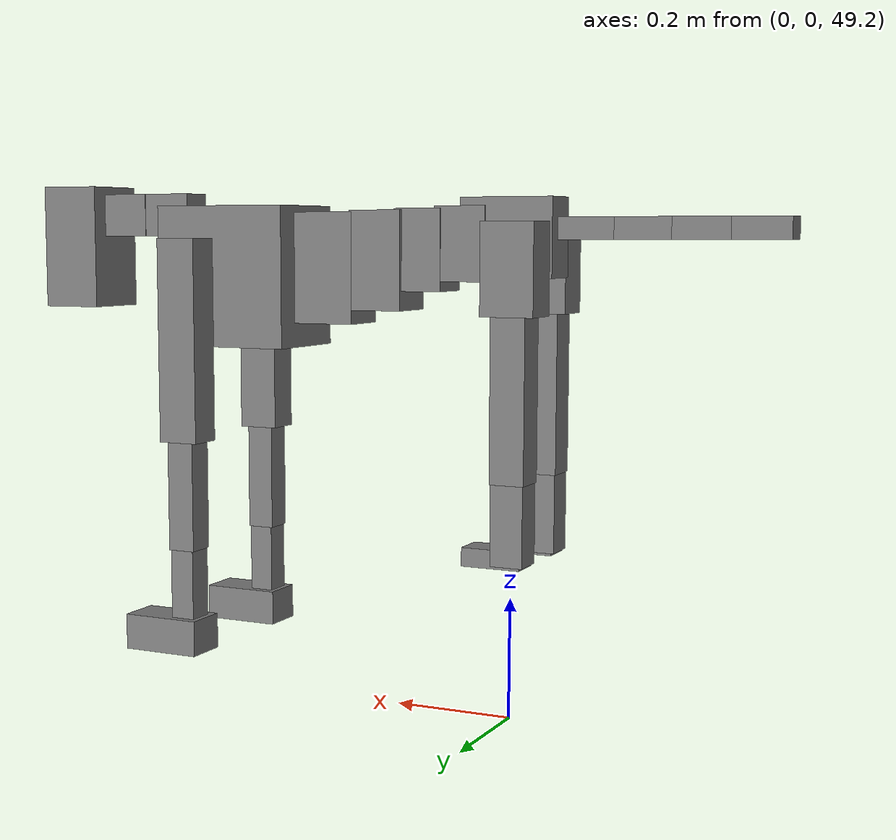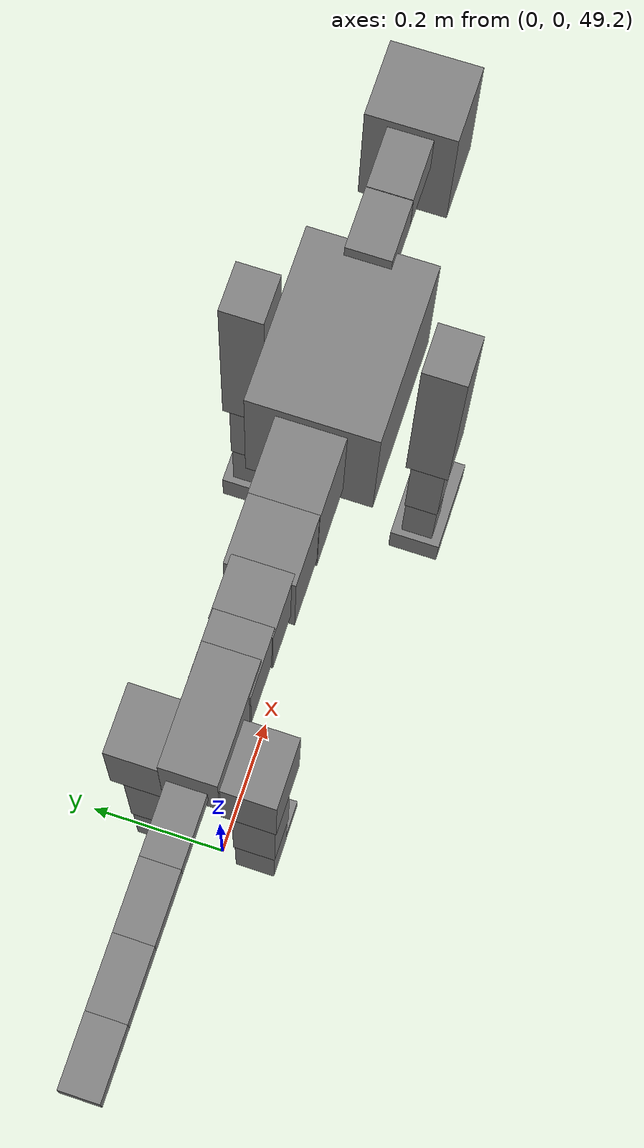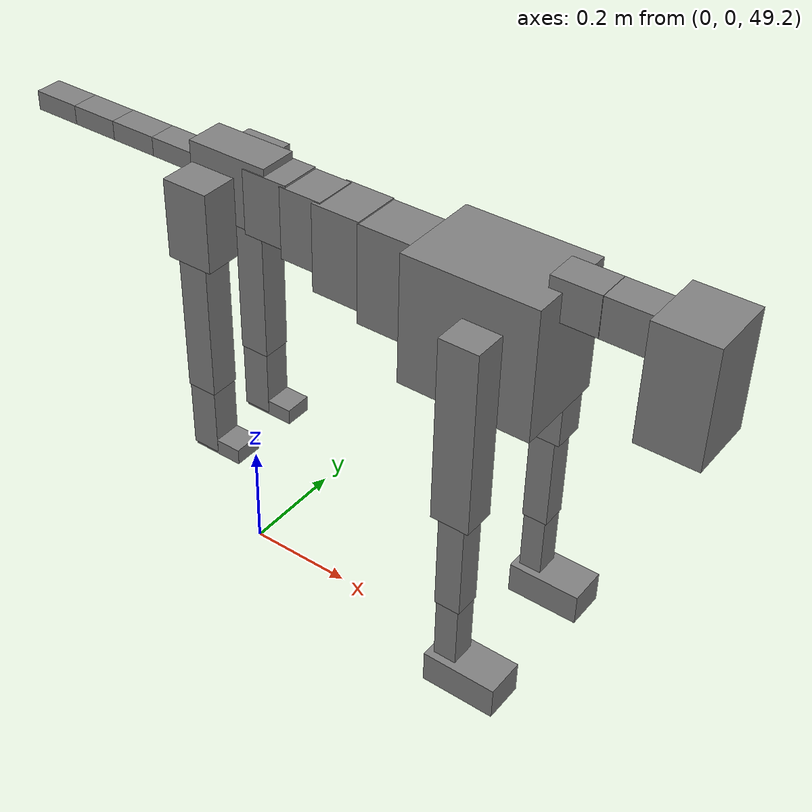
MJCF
<mujoco model="dog">

    <default>
        <joint armature="0.02" stiffness="1" damping="0.2" limited="true"/>
        <geom condim="3" friction="1 0.05 0.05" margin="0.01"/>
        <motor ctrllimited="true" ctrlrange="-1.0 1.0" forcelimited="true" gear="50"/>
    </default>

    <compiler inertiafromgeom="true" angle="radian"/>

    <option timestep="0.016" iterations="50" tolerance="1e-10" solver="Newton" jacobian="dense" cone="pyramidal"/>

    <size nconmax="20000" njmax="60000" nstack="5000000"/>
    <visual>
        <map force="0.1" zfar="30"/>
        <rgba haze="0.15 0.25 0.35 1"/>
        <quality shadowsize="2048"/>
        <global offwidth="800" offheight="800"/>
    </visual>

    <asset>
        <texture type="skybox" builtin="gradient" rgb1="0.3 0.5 0.7" rgb2="0 0 0" width="512" height="512"/>
        <texture name="texplane" type="2d" builtin="checker" rgb1=".2 .3 .4" rgb2=".1 0.15 0.2" width="512" height="512"
                 mark="cross" markrgb=".8 .8 .8"/>
        <texture name="texgeom" type="cube" builtin="flat" mark="cross" width="127" height="1278" rgb1="0.8 0.6 0.4"
                 rgb2="0.8 0.6 0.4" markrgb="1 1 1" random="0.01"/>

        <material name="matplane" reflectance="0.3" texture="texplane" texrepeat="1 1" texuniform="true"/>
        <material name="matgeom" texture="texgeom" texuniform="true" rgba="0.8 0.6 .4 1"/>
    </asset>

    <worldbody>
        <geom name="floor" pos="0 0 0" size="0 0 .25" type="plane" material="matplane" condim="3"/>

        <light directional="false" diffuse=".2 .2 .2" specular="0 0 0" pos="0 0 5" dir="0 0 -1" castshadow="false"/>
        <light mode="targetbodycom" target="torso" directional="false" diffuse=".8 .8 .8" specular="0.3 0.3 0.3"
               pos="0 0 4.0" dir="0 0 -1"/>

        <body name="root" pos="0 0 50">
            <freejoint name="root_1"/>
            <geom type="box" pos="0 0 -0.02" size="0.0774  0.0358  0.063" density="2030"/>

            <body name="spine1" pos="0.054 0 0">
                <joint name="spine1_y" axis="0 1 0" range="0 0.7" limited="true"/>
                <geom type="box" pos="0.02375 0 -0.03" size="0.04375  0.0375  0.05985" density="2030"/>

                <body name="spine2" pos="0.0612 0 0">
                    <joint name="spine2_y" axis="0 1 0" range="-0.15 0.15" limited="true"/>
                    <geom type="box" pos="0.03555  0  -0.04" size="0.04055  0.039  0.06615" density="2030"/>

                    <body name="spine3" pos="0.0730 0 0">
                        <joint name="spine3_y" axis="0 1 0" range="-0.15 0.15" limited="true"/>
                        <geom type="box" pos="0.03555  0  -0.057" size="0.04555  0.0445  0.081" density="2030"/>

                        <body name="spine4" pos="0.0780 0 0">
                            <joint name="spine4_y" axis="0 1 0" range="-0.15 0.15" limited="true"/>
                            <geom type="box" pos="0.05265  0  -0.07" size="0.05265  0.045  0.09135" density="2030"/>

                            <body name="torso" pos="0.1082 0 0">
                                <joint name="torso_y" axis="0 1 0" range="-0.15 0.15" limited="true"/>
                                <geom type="box" pos="0.11925  0  -0.085" size="0.11925  0.085  0.11745"
                                      density="2030"/>

                                <body name="neck1" pos="0.2160  0   0.0180">
                                    <joint name="neck1_y" axis="0 1 0" range="-1.2  -1" limited="true"/>
                                    <geom type="box" pos="0.0423  0  0" size="0.0423  0.03  0.036" density="2325"/>

                                    <body name="neck2" pos="0.0853  0  0">
                                        <joint name="neck2_y" axis="0 1 0" range="0.1  0" limited="true"/>
                                        <geom type="box" pos="0.0423  0  0" size="0.0423  0.03  0.036" density="2325"/>

                                        <body name="head" pos="0.0853  0  0">
                                            <joint name="head_y" axis="0 1 0" range="-0.3  -0.2" limited="true"/>
                                            <geom type="box" pos="0.0531  0  -0.055" size="0.0531  0.06  0.1044"
                                                  density="4030"/>

                                        </body>
                                    </body>
                                </body>

                                <body name="front_shoulder" pos="0.156  0   -0.0480">
                                    <joint name="front_shoulder_y" axis="0 1 0" range="-1 1.5" limited="true"/>
                                    <geom type="box" pos="0 0.13 -0.1417" size="0.0347  0.0297  0.1683" density="1158"/>
                                    <geom type="box" pos="0 -0.13 -0.1417" size="0.0347  0.0297  0.1683"
                                          density="1158"/>

                                    <body name="front_elbow" pos="0  0  -0.2833">
                                        <joint name="front_elbow_y" axis="0 1 0" range="-2 0" limited="true"/>
                                        <geom type="box" pos="0 0.13 -0.1044" size="0.0235  0.0240  0.1044"
                                              density="1081"/>
                                        <geom type="box" pos="0 -0.13 -0.1044" size="0.0235  0.0240  0.1044"
                                              density="1081"/>

                                        <body name="front_wrist" pos="0  0  -0.2088">
                                            <joint name="front_wrist_y" axis="0 1 0" range="-0.2 0" limited="true"/>
                                            <geom type="box" pos="0 0.13 -0.0653" size="0.0208  0.0231  0.0784"
                                                  density="1664"/>
                                            <geom type="box" pos="0 -0.13 -0.0653" size="0.0208  0.0231  0.0784"
                                                  density="1664"/>

                                            <body name="front_finger_end" pos="0  0  -0.1305">
                                                <joint name="front_finger_y" axis="0 1 0" range="-0.4 1"
                                                       limited="true"/>
                                                <geom type="box" pos="0.0368  0.13  -0.0148"
                                                      size="0.0675  0.0368  0.0298" density="1515"/>
                                                <geom type="box" pos="0.0368  -0.13  -0.0148"
                                                      size="0.0675  0.0368  0.0298" density="1515"/>

                                            </body>

                                        </body>
                                    </body>
                                </body>

                            </body>
                        </body>
                    </body>
                </body>
            </body>

            <body name="back_hip" pos="-0.03 0 -0.018">
                <joint name="back_hip_y" axis="0 1 0" range="-1.5 0.3" limited="true"/>
                <geom type="box" pos="0 0.07 -0.0501" size="0.0438  0.0344  0.0729" density="1154"/>
                <geom type="box" pos="0 -0.07 -0.0501" size="0.0438  0.0344  0.0729" density="1154"/>

                <body name="back_knee" pos="0  0  -0.1002">
                    <joint name="back_knee_y" axis="0 1 0" range="0 2.8" limited="true"/>
                    <geom type="box" pos="0 0.07 -0.1334" size="0.0285  0.0281  0.1489" density="1227"/>
                    <geom type="box" pos="0 -0.07 -0.1334" size="0.0285  0.0281  0.1489" density="1227"/>

                    <body name="back_ankle" pos="0  0  -0.2668">
                        <joint name="back_ankle_y" axis="0 1 0" range="-2.2 0" limited="true"/>
                        <geom type="box" pos="0 0.07 -0.0666" size="0.0268  0.0268  0.0778" density="1284"/>
                        <geom type="box" pos="0 -0.07 -0.0666" size="0.0268  0.0268  0.0778" density="1284"/>

                        <body name="back_toe_end" pos="0  0  -0.1331">
                            <joint name="back_toe_y" axis="0 1 0" range="-0.4 1" limited="true"/>
                            <geom type="box" pos="0.0265  0.07  0.0000" size="0.0486  0.0265  0.0150" density="1515"/>
                            <geom type="box" pos="0.0265  -0.07  0.0000" size="0.0486  0.0265  0.0150" density="1515"/>

                        </body>
                    </body>
                </body>
            </body>

            <body name="tail1" pos="-0.074 0 -0.006">
                <joint name="tail1_y" axis="0 1 0" range="-0.2 0.2" limited="true"/>
                <geom type="box" pos="-0.0536  0  0" size="0.045  0.025  0.0175" density="1587"/>

                <body name="tail2" pos="-0.09 0 0">
                    <joint name="tail2_y" axis="0 1 0" range="-0.2 0.2" limited="true"/>
                    <geom type="box" pos="-0.0536  0  0" size="0.045  0.025  0.0175" density="1587"/>

                    <body name="tail3" pos="-0.09 0 0">
                        <joint name="tail3_y" axis="0 1 0" range="-0.2 0.2" limited="true"/>
                        <geom type="box" pos="-0.0536  0  0" size="0.045  0.025  0.0175" density="1587"/>

                        <body name="tail4" pos="-0.09 0 0">
                            <joint name="tail4_y" axis="0 1 0" range="-0.2 0.2" limited="true"/>
                            <geom type="box" pos="-0.0536  0  0" size="0.045  0.025  0.0175" density="1587"/>

                        </body>
                    </body>
                </body>
            </body>
        </body>
    </worldbody>

    <actuator>
        <motor joint="spine1_y" forcerange="-150 150     "/>
        <motor joint="spine2_y" forcerange="-150 150     "/>
        <motor joint="spine3_y" forcerange="-150 150     "/>
        <motor joint="spine4_y" forcerange="-150 150     "/>
        <motor joint="torso_y" forcerange="-150 150     "/>
        <motor joint="neck1_y" forcerange="-100 100       "/>
        <motor joint="neck2_y" forcerange="-100 100       "/>
        <motor joint="head_y" forcerange="-150 150       "/>
        <motor joint="front_shoulder_y" forcerange="-150.94 146.82"/>
        <motor joint="front_elbow_y" forcerange="-153.78 120.86"/>
        <motor joint="front_wrist_y" forcerange="-73.93 110.84"/>
        <motor joint="front_finger_y" forcerange="-74.18 82.21"/>
        <motor joint="back_hip_y" forcerange="-349.39 308.77"/>
        <motor joint="back_knee_y" forcerange="-354.15 254.43"/>
        <motor joint="back_angle_y" forcerange="-99.37 230.18"/>
        <motor joint="back_toe_y" forcerange="-83.47 48.46"/>
        <motor joint="tail1_y" forcerange="-50 50     "/>
        <motor joint="tail2_y" forcerange="-50 50     "/>
        <motor joint="tail3_y" forcerange="-50 50     "/>
        <motor joint="tail4_y" forcerange="-50 50     "/>
    </actuator>
</mujoco>
